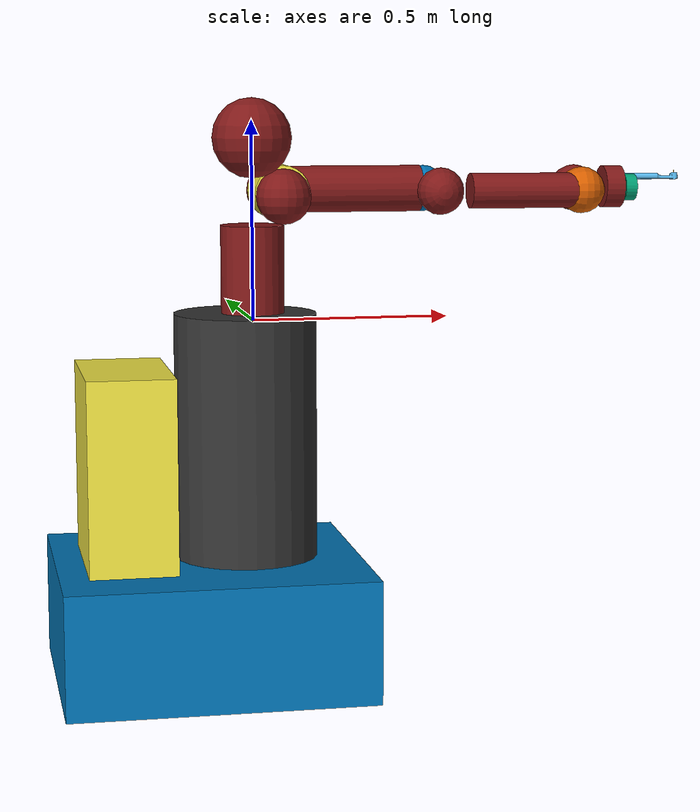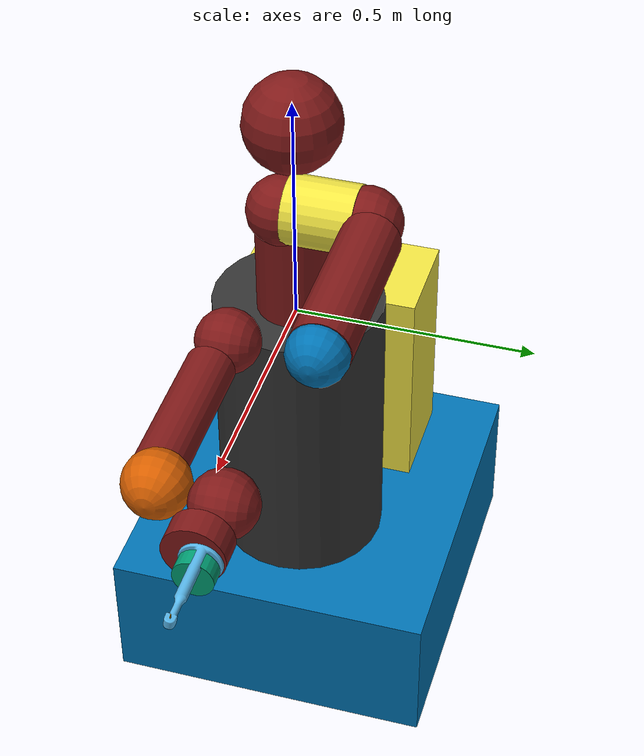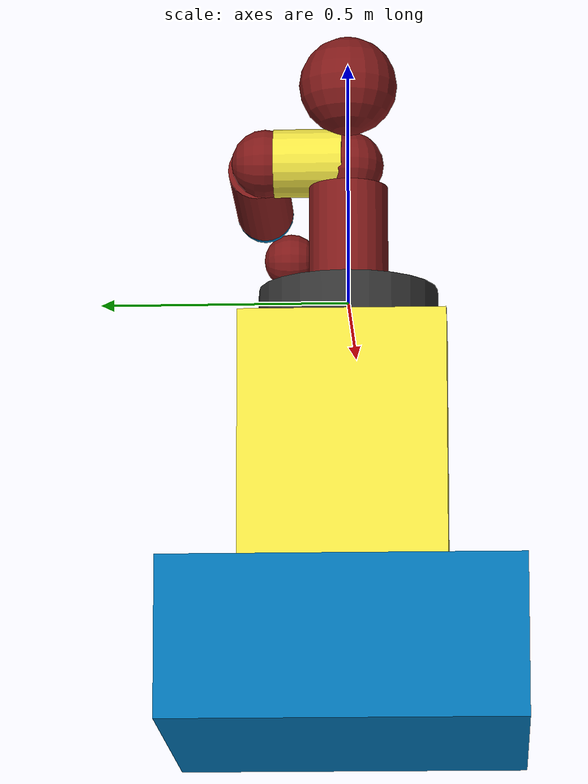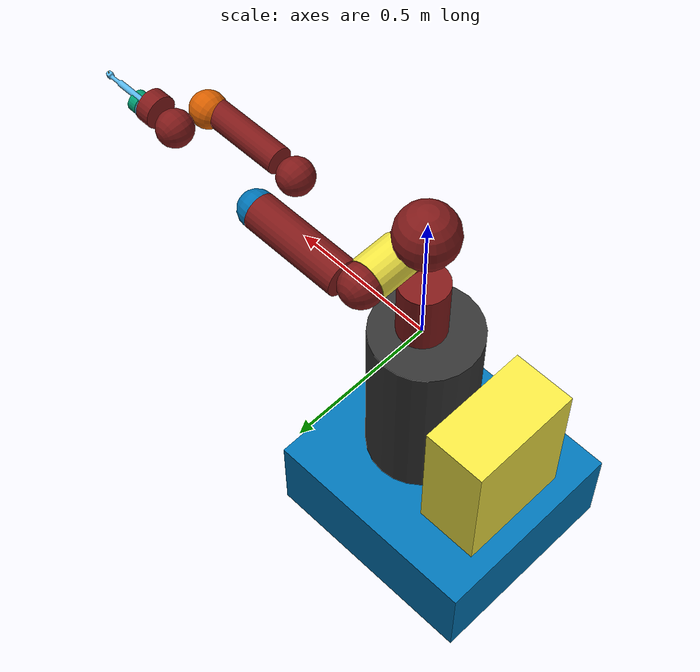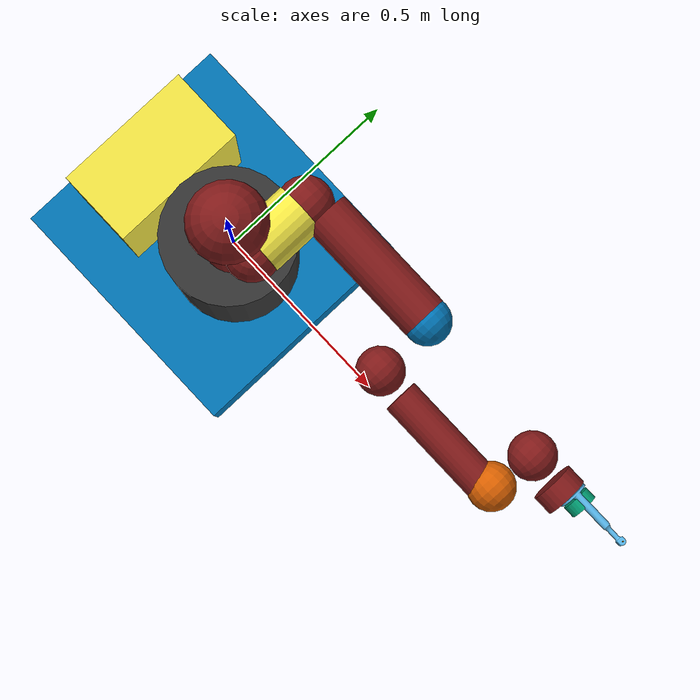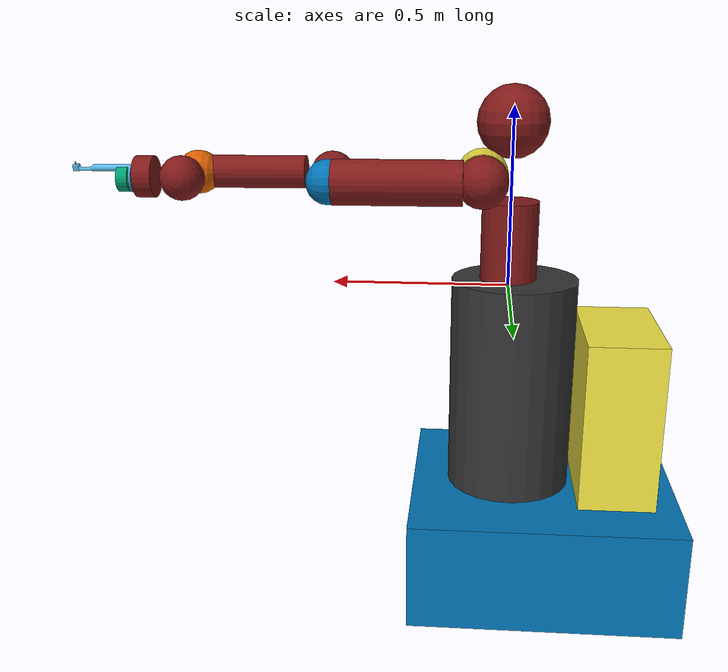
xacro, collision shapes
<?xml version="1.0" ?>
<robot name="sawyer" xmlns:xacro="http://www.ros.org/wiki/xacro">

  <xacro:arg name="gazebo" default="false"/>
  <xacro:arg name="pedestal" default="true"/>
  <xacro:arg name="static" default="true"/>
  <xacro:arg name="dental_drill" default="true"/>
  <xacro:arg name="electric_gripper" default="false"/>
  <!-- Sawyer Base URDF -->
  <xacro:include filename="package://sawyer_description/urdf/sawyer_base.urdf.xacro">
    <xacro:arg name="gazebo" value="${gazebo}"/>
    <xacro:arg name="pedestal" value="${pedestal}"/>
  </xacro:include>
  <xacro:if value="$(arg gazebo)">
  <xacro:include filename="package://sawyer_description/urdf/sawyer_base.gazebo.xacro">
    <xacro:arg name="static" value="${static}"/>
    <xacro:arg name="pedestal" value="${pedestal}"/>
  </xacro:include>
  </xacro:if>
  <!-- Electric Gripper End Effector -->
  <xacro:if value="$(arg electric_gripper)">
  <xacro:include filename="package://sawyer_description/urdf/sawyer_electric_gripper.urdf.xacro">
    <xacro:arg name="gazebo" value="${gazebo}"/>
  </xacro:include>
  </xacro:if>
  <!-- Dental Drill End Effector -->
  <xacro:if value="$(arg dental_drill)">
  <xacro:include filename="package://sawyer_description/urdf/sawyer_dental_drill.urdf.xacro">
    <xacro:arg name="gazebo" value="${gazebo}"/>
  </xacro:include>
  </xacro:if>

</robot>

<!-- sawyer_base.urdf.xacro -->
<robot name="sawyer" xmlns:xacro="http://www.ros.org/wiki/xacro">
  <xacro:arg name="gazebo" default="false"/>
  <xacro:arg name="pedestal" default="true"/>
  <material name="black">
    <color rgba="0 0 0 1"/>
  </material>
  <material name="darkgray">
    <color rgba=".2 .2 .2 1"/>
  </material>
  <material name="darkred">
    <color rgba=".5 .1 .1 1"/>
  </material>
  <material name="sawyer_red">
    <color rgba=".5 .1 .1 1"/>
  </material>
  <material name="sawyer_gray">
    <color rgba="0.75294 0.75294 0.75294 1"/>
  </material>
  <link name="base"/>
  <link name="torso">
    <visual>
      <origin rpy="0 0 0" xyz="0 0 0"/>
      <geometry>
        <box size="0.001 0.001 0.001"/>
      </geometry>
      <material name="darkgray">
        <color rgba=".2 .2 .2 1"/>
      </material>
    </visual>
<xacro:unless value="$(arg gazebo)">
    <inertial>
      <origin rpy="0 0 0" xyz="0.000000 0.000000 0.000000"/>
      <mass value="0.0001"/>
      <inertia ixx="1e-08" ixy="0" ixz="0" iyy="1e-08" iyz="0" izz="1e-08"/>
    </inertial>
</xacro:unless>
  </link>
<xacro:if value="$(arg pedestal)">
  <link name="pedestal">
    <visual>
      <origin rpy="1.57079632679 0 -1.57079632679" xyz="0.26 0.345 -0.91488"/>
      <geometry>
        <mesh filename="package://sawyer_description/meshes/sawyer_pv/pedestal.DAE"/>
      </geometry>
      <material name="darkgray"/>
    </visual>
    <collision>
      <origin rpy="0 0 0" xyz="-0.02 0 -0.29"/>
      <geometry>
        <cylinder length="0.62" radius="0.18"/>
      </geometry>
    </collision>
    <inertial>
      <origin rpy="0 0 0" xyz="0 0 -0.5"/>
      <mass value="60.86397744"/>
      <inertia ixx="5.0635929" ixy="0.00103417" ixz="0.80199628" iyy="6.08689388" iyz="0.00105311" izz="4.96191932"/>
    </inertial>
  </link>
  <link name="controller_box">
    <collision>
      <origin rpy="0 0 0" xyz="-0.325 0 -0.38"/>
      <geometry>
        <box size="0.22 0.4 0.53"/>
      </geometry>
    </collision>
  </link>
  <joint name="controller_box_fixed" type="fixed">
    <origin rpy="0 0 0" xyz="0.0 0.0 0.0"/>
    <parent link="base"/>
    <child link="controller_box"/>
  </joint>
  <link name="pedestal_feet">
    <collision>
      <origin rpy="0 0 0" xyz="-0.1225 0 -0.758"/>
      <geometry>
        <box size="0.77 0.7 0.31"/>
      </geometry>
    </collision>
  </link>
  <joint name="pedestal_feet_fixed" type="fixed">
    <origin rpy="0 0 0" xyz="0.0 0.0 0.0"/>
    <parent link="base"/>
    <child link="pedestal_feet"/>
  </joint>
  <joint name="pedestal_fixed" type="fixed">
    <origin rpy="0 0 0" xyz="0.0 0.0 0.0"/>
    <parent link="base"/>
    <child link="pedestal"/>
  </joint>
</xacro:if>
  <joint name="right_arm_mount" type="fixed">
    <origin rpy="0 0 0" xyz="0.0 0.0 0.0"/>
    <parent link="base"/>
    <child link="right_arm_base_link"/>
  </joint>
  <joint name="torso_t0" type="fixed">
    <origin rpy="0 0 0" xyz="0 0 0"/>
    <parent link="base"/>
    <child link="torso"/>
  </joint>
  <link name="right_arm_base_link">
    <inertial>
      <origin rpy="0 0 0" xyz="-0.0006241 -2.8025E-05 0.065404"/>
      <mass value="2.0687"/>
      <inertia ixx="0.0067599" ixy="-4.2024E-05" ixz="-6.1904E-07" iyy="0.0067877" iyz="1.5888E-05" izz="0.0074031"/>
    </inertial>
    <visual>
      <origin rpy="0 0 0" xyz="0 0 0"/>
      <geometry>
        <mesh filename="package://sawyer_description/meshes/sawyer_pv/base.DAE"/>
      </geometry>
      <material name="sawyer_red"/>
    </visual>
    <collision>
      <origin rpy="0 0 0" xyz="0 0 0.12"/>
      <geometry>
        <cylinder length="0.24" radius="0.08"/>
      </geometry>
    </collision>
  </link>
  <link name="right_l0">
    <inertial>
      <origin rpy="0 0 0" xyz="0.024366 0.010969 0.14363"/>
      <mass value="5.3213"/>
      <inertia ixx="0.053314" ixy="0.0047093" ixz="0.011734" iyy="0.057902" iyz="0.0080179" izz="0.023659"/>
    </inertial>
    <visual>
      <origin rpy="0 0 0" xyz="0 0 0"/>
      <geometry>
        <mesh filename="package://sawyer_description/meshes/sawyer_mp3/l0.DAE"/>
      </geometry>
      <material name="sawyer_red"/>
    </visual>
    <collision>
      <origin rpy="0 0 0" xyz="0.08 0 0.23"/>
      <geometry>
        <sphere radius="0.07"/>
      </geometry>
    </collision>
  </link>
  <joint name="right_j0" type="revolute">
    <origin rpy="-0.0001523544 0.0008183138 -0.0003147602" xyz="0.0005568102 -2.7503e-05 0.0797797795"/>
    <parent link="right_arm_base_link"/>
    <child link="right_l0"/>
    <axis xyz="0 0 1"/>
    <limit effort="80.0" lower="-3.0503" upper="3.0503" velocity="1.74"/>
<xacro:if value="$(arg gazebo)">
    <dynamics damping="10.0" friction="5.0"/>
</xacro:if>
  </joint>
  <link name="head">
    <inertial>
      <origin rpy="0 0 0" xyz="0.0053207 -2.6549E-05 0.1021"/>
      <mass value="1.5795"/>
      <inertia ixx="0.011833" ixy="-4.4669E-06" ixz="4.9425E-05" iyy="0.0082709" iyz="4.2124E-07" izz="0.0049661"/>
    </inertial>
    <visual>
      <origin rpy="0 0 0" xyz="0 0 0"/>
      <geometry>
        <mesh filename="package://sawyer_description/meshes/sawyer_pv/head.DAE"/>
      </geometry>
      <material name="sawyer_red"/>
    </visual>
    <collision>
      <origin rpy="0 0 0" xyz="0 0 0.08"/>
      <geometry>
        <sphere radius="0.1"/>
      </geometry>
    </collision>
  </link>
  <joint name="head_pan" type="revolute">
    <origin rpy="-0.00061707143079 -0.00046281620664 0.0832701592425" xyz="-7.94922320844e-05 -0.000150449608932 0.2965"/>
    <parent link="right_l0"/>
    <child link="head"/>
    <axis xyz="0 0 1"/>
    <limit effort="8" lower="-5.0952" upper="0.9064" velocity="1.8"/>
<xacro:if value="$(arg gazebo)">
    <dynamics damping="1.0" friction="0.5"/>
</xacro:if>
  </joint>
  <link name="right_torso_itb">
<xacro:unless value="$(arg gazebo)">
    <inertial>
      <origin rpy="0 0 0" xyz="0.000000 0.000000 0.000000"/>
      <mass value="0.0001"/>
      <inertia ixx="1e-08" ixy="0" ixz="0" iyy="1e-08" iyz="0" izz="1e-08"/>
    </inertial>
</xacro:unless>
  </link>
  <joint name="right_torso_itb" type="fixed">
    <origin rpy="0 -1.57079632679 0" xyz="-.055 0 .22"/>
    <parent link="right_l0"/>
    <child link="right_torso_itb"/>
    <axis xyz="0 0 1"/>
  </joint>
  <link name="right_l1">
    <inertial>
      <origin rpy="0 0 0" xyz="-0.0030849 -0.026811 0.092521"/>
      <mass value="4.505"/>
      <inertia ixx="0.022398" ixy="-0.00023986" ixz="-0.00029362" iyy="0.014613" iyz="-0.0060875" izz="0.017295"/>
    </inertial>
    <visual>
      <origin rpy="0 0 0" xyz="0 0 0"/>
      <geometry>
        <mesh filename="package://sawyer_description/meshes/sawyer_mp3/l1.DAE"/>
      </geometry>
      <material name="sawyer_red"/>
    </visual>
    <collision>
      <origin rpy="0 0 0" xyz="0 0 0.1225"/>
      <geometry>
        <sphere radius="0.07"/>
      </geometry>
    </collision>
  </link>
  <joint name="right_j1" type="revolute">
    <origin rpy="-1.57099592069 1.57038480649 2.75923e-05" xyz="0.080562902 0.0500598564 0.237"/>
    <parent link="right_l0"/>
    <child link="right_l1"/>
    <axis xyz="0 0 1"/>
    <limit effort="80.0" lower="-3.8095" upper="2.2736" velocity="1.328"/>
<xacro:if value="$(arg gazebo)">
    <dynamics damping="5.0" friction="2.0"/>
</xacro:if>
  </joint>
  <link name="right_l2">
    <inertial>
      <origin rpy="0 0 0" xyz="-0.00016044 -0.014967 0.13582"/>
      <mass value="1.745"/>
      <inertia ixx="0.025506" ixy="4.4101E-06" ixz="1.4955E-05" iyy="0.0253" iyz="-0.0033204" izz="0.0034179"/>
    </inertial>
    <visual>
      <origin rpy="0 0 0" xyz="0 0 0"/>
      <geometry>
        <mesh filename="package://sawyer_description/meshes/sawyer_pv/l2.DAE"/>
      </geometry>
      <material name="sawyer_red"/>
    </visual>
    <collision>
      <origin rpy="0 0 0" xyz="0 0 0.08"/>
      <geometry>
        <cylinder length="0.34" radius="0.06"/>
      </geometry>
    </collision>
  </link>
  <joint name="right_j2" type="revolute">
    <origin rpy="1.56964620609 0.0013338202 0.001673633" xyz="-0.0003271857 -0.1402331099 0.1426167268"/>
    <parent link="right_l1"/>
    <child link="right_l2"/>
    <axis xyz="0 0 1"/>
    <limit effort="40.0" lower="-3.0426" upper="3.0426" velocity="1.957"/>
<xacro:if value="$(arg gazebo)">
    <dynamics damping="5.0" friction="2.0"/>
</xacro:if>
  </joint>
  <link name="right_l3">
    <inertial>
      <origin rpy="0 0 0" xyz="-0.0048135 -0.0281 -0.084154"/>
      <mass value="2.5097"/>
      <inertia ixx="0.01016" ixy="-9.7452E-06" ixz="0.00026624" iyy="0.0065685" iyz="0.0030316" izz="0.0069078"/>
    </inertial>
    <visual>
      <origin rpy="0 0 0" xyz="0 0 0"/>
      <geometry>
        <mesh filename="package://sawyer_description/meshes/sawyer_pv/l3.DAE"/>
      </geometry>
      <material name="sawyer_red"/>
    </visual>
    <collision>
      <origin rpy="0 0 0" xyz="0 -0.01 -0.12"/>
      <geometry>
        <sphere radius="0.06"/>
      </geometry>
    </collision>
  </link>
  <joint name="right_j3" type="revolute">
    <origin rpy="-1.57208051179 -0.0007098157 -0.0012794286" xyz="-0.0001859204 -0.0419355268 0.2597852048"/>
    <parent link="right_l2"/>
    <child link="right_l3"/>
    <axis xyz="0 0 1"/>
    <limit effort="40.0" lower="-3.0439" upper="3.0439" velocity="1.957"/>
 <xacro:if value="$(arg gazebo)">
    <dynamics damping="1.0" friction="0.5"/>
</xacro:if>
  </joint>
  <link name="right_l4">
    <inertial>
      <origin rpy="0 0 0" xyz="-0.0018844 0.0069001 0.1341"/>
      <mass value="1.1136"/>
      <inertia ixx="0.013557" ixy="1.8109E-05" ixz="0.00013523" iyy="0.013555" iyz="0.0010561" izz="0.0013658"/>
    </inertial>
    <visual>
      <origin rpy="0 0 0" xyz="0 0 0"/>
      <geometry>
        <mesh filename="package://sawyer_description/meshes/sawyer_pv/l4.DAE"/>
      </geometry>
      <material name="sawyer_red"/>
    </visual>
    <collision>
      <origin rpy="0 0 0" xyz="0 0 0.11"/>
      <geometry>
        <cylinder length="0.30" radius="0.045"/>
      </geometry>
    </collision>
  </link>
  <joint name="right_j4" type="revolute">
    <origin rpy="1.57045446649 -0.0021863709 0.0037312215" xyz="-0.0005718529 -0.1251959063 -0.126478624"/>
    <parent link="right_l3"/>
    <child link="right_l4"/>
    <axis xyz="0 0 1"/>
    <limit effort="9.0" lower="-2.9761" upper="2.9761" velocity="3.485"/>
<xacro:if value="$(arg gazebo)">
    <dynamics damping="2.0" friction="1.0"/>
</xacro:if>
  </joint>
  <link name="right_arm_itb">
<xacro:unless value="$(arg gazebo)">
    <inertial>
      <origin rpy="0 0 0" xyz="0.000000 0.000000 0.000000"/>
      <mass value="0.0001"/>
      <inertia ixx="1e-08" ixy="0" ixz="0" iyy="1e-08" iyz="0" izz="1e-08"/>
    </inertial>
</xacro:unless>
  </link>
  <joint name="right_arm_itb" type="fixed">
    <origin rpy="0 -1.57079632679 0" xyz="-.055 0 .075"/>
    <parent link="right_l4"/>
    <child link="right_arm_itb"/>
    <axis xyz="0 0 1"/>
  </joint>
  <link name="right_l5">
    <inertial>
      <origin rpy="0 0 0" xyz="0.0061133 -0.023697 0.076416"/>
      <mass value="1.5625"/>
      <inertia ixx="0.0047328" ixy="0.00011526" ixz="4.6269E-05" iyy="0.0029676" iyz="-0.0011557" izz="0.0031762"/>
    </inertial>
    <visual>
      <origin rpy="0 0 0" xyz="0 0 0"/>
      <geometry>
        <mesh filename="package://sawyer_description/meshes/sawyer_pv/l5.DAE"/>
      </geometry>
      <material name="sawyer_red"/>
    </visual>
    <collision>
      <origin rpy="0 0 0" xyz="0 0 0.1"/>
      <geometry>
        <sphere radius="0.06"/>
      </geometry>
    </collision>
  </link>
  <joint name="right_j5" type="revolute">
    <origin rpy="-1.57060120179 0.0028546724 0.0016908371" xyz="9.99503e-05 0.0305539513 0.274694147"/>
    <parent link="right_l4"/>
    <child link="right_l5"/>
    <axis xyz="0 0 1"/>
    <limit effort="9.0" lower="-2.9761" upper="2.9761" velocity="3.485"/>
<xacro:if value="$(arg gazebo)">
    <dynamics damping="1.0" friction="0.5"/>
</xacro:if>
  </joint>
  <link name="right_hand_camera"/>
  <joint name="right_hand_camera" type="fixed">
    <origin rpy="0.746138564105 1.54985201766 0.782687319262" xyz="0.0385715749764 -0.0325252183853 0.068944953023"/>
    <parent link="right_l5"/>
    <child link="right_hand_camera"/>
    <axis xyz="0 0 0"/>
  </joint>
  <link name="right_wrist"/>
  <joint name="right_wrist" type="fixed">
    <origin rpy="1.57079632679 0 0" xyz="0 0 0.10541"/>
    <parent link="right_l5"/>
    <child link="right_wrist"/>
    <axis xyz="0 0 0"/>
  </joint>
  <link name="right_l6">
    <inertial>
      <origin rpy="0 0 0" xyz="-8.0726E-06 0.0085838 -0.0049566"/>
      <mass value="0.3292"/>
      <inertia ixx="0.00031105" ixy="1.4771E-06" ixz="-3.7074E-07" iyy="0.00021549" iyz="-8.4533E-06" izz="0.00035976"/>
    </inertial>
    <visual>
      <origin rpy="0 0 0" xyz="0 0 0"/>
      <geometry>
        <mesh filename="package://sawyer_description/meshes/sawyer_mp1/l6.DAE"/>
      </geometry>
      <material name="sawyer_red"/>
    </visual>
    <collision>
      <origin rpy="0 0 0" xyz="0 0.015 -0.01"/>
      <geometry>
        <cylinder length="0.05" radius="0.055"/>
      </geometry>
    </collision>
  </link>
  <joint name="right_j6" type="revolute">
    <origin rpy="-1.56953611109 -0.17953 3.1422744561" xyz="0.0001394481 -0.1098312125 0.1049093833"/>
    <parent link="right_l5"/>
    <child link="right_l6"/>
    <axis xyz="0 0 1"/>
<xacro:if value="$(arg gazebo)">
    <limit effort="9.0" lower="-3.14" upper="3.14" velocity="4.545"/>
    <dynamics damping="1.0" friction="0.5"/>
</xacro:if>
<xacro:unless value="$(arg gazebo)">
    <limit effort="9.0" lower="-4.7124" upper="4.7124" velocity="4.545"/>
</xacro:unless>
  </joint>
  <link name="right_hand">
    <collision>
      <origin rpy="0 0 0" xyz="0 0 0.02"/>
      <geometry>
        <cylinder length="0.03" radius="0.035"/>
      </geometry>
    </collision>
<xacro:if value="$(arg gazebo)">
    <inertial>
      <origin rpy="0 0 0" xyz="0 0.1 0"/>
      <mass value="0.01"/>
      <inertia ixx="0.01" ixy="0.01" ixz="0.01" iyy="0.01" iyz="0.01" izz="0.01"/>
  </inertial>
</xacro:if>
<xacro:unless value="$(arg gazebo)">
    <inertial>
      <origin rpy="0 0 0" xyz="1.0E-08 1.0E-08 1.0E-08"/>
      <mass value="1.0E-08"/>
      <inertia ixx="1.0E-08" ixy="1.0E-08" ixz="1.0E-08" iyy="1.0E-08" iyz="1.0E-08" izz="1.0E-08"/>
    </inertial>
</xacro:unless>
  </link>
  <joint name="right_hand" type="fixed">
    <origin rpy="0 0 1.570796" xyz="0 0 0.0245"/>
    <axis xyz="0 0 1"/>
    <parent link="right_l6"/>
    <child link="right_hand"/>
  </joint>
  <link name="right_l1_2">
<xacro:unless value="$(arg gazebo)">
    <inertial>
      <origin rpy="0 0 0" xyz="1.0E-08 1.0E-08 1.0E-08"/>
      <mass value="1.0E-08"/>
      <inertia ixx="1.0E-08" ixy="1.0E-08" ixz="1.0E-08" iyy="1.0E-08" iyz="1.0E-08" izz="1.0E-08"/>
    </inertial>
</xacro:unless>
    <collision>
      <origin rpy="0 0 0" xyz="0 0 0.035"/>
      <geometry>
        <cylinder length="0.14" radius="0.07"/>
      </geometry>
    </collision>
  </link>
  <joint name="right_j1_2" type="fixed">
    <origin rpy="0 0 0" xyz="0 0 0"/>
    <parent link="right_l1"/>
    <child link="right_l1_2"/>
    <axis xyz="0 0 1"/>
  </joint>
  <link name="right_l2_2">
<xacro:unless value="$(arg gazebo)">
    <inertial>
      <origin rpy="0 0 0" xyz="1.0E-08 1.0E-08 1.0E-08"/>
      <mass value="1.0E-08"/>
      <inertia ixx="1.0E-08" ixy="1.0E-08" ixz="1.0E-08" iyy="1.0E-08" iyz="1.0E-08" izz="1.0E-08"/>
    </inertial>
</xacro:unless>
    <collision>
      <origin rpy="0 0 0" xyz="0 0 0.26"/>
      <geometry>
        <sphere radius="0.06"/>
      </geometry>
    </collision>
  </link>
  <joint name="right_j2_2" type="fixed">
    <origin rpy="0 0 0" xyz="0 0 0"/>
    <parent link="right_l2"/>
    <child link="right_l2_2"/>
    <axis xyz="0 0 1"/>
  </joint>
  <link name="right_l4_2">
<xacro:unless value="$(arg gazebo)">
    <inertial>
      <origin rpy="0 0 0" xyz="1.0E-08 1.0E-08 1.0E-08"/>
      <mass value="1.0E-08"/>
      <inertia ixx="1.0E-08" ixy="1.0E-08" ixz="1.0E-08" iyy="1.0E-08" iyz="1.0E-08" izz="1.0E-08"/>
    </inertial>
</xacro:unless>
    <collision>
      <origin rpy="0 0 0" xyz="0 0.01 0.26"/>
      <geometry>
        <sphere radius="0.06"/>
      </geometry>
    </collision>
  </link>
  <joint name="right_j4_2" type="fixed">
    <origin rpy="0 0 0" xyz="0 0 0"/>
    <parent link="right_l4"/>
    <child link="right_l4_2"/>
    <axis xyz="0 0 1"/>
  </joint>
  <link name="screen">
    <visual>
      <origin rpy="0 0 0" xyz="0 0 0"/>
      <geometry>
        <box size="0.24 0.14 0.002"/>
      </geometry>
      <material name="darkgray"/>
    </visual>
    <collision>
      <origin rpy="0 0 0" xyz="0 0 0"/>
      <geometry>
        <sphere radius="0.001"/>
      </geometry>
    </collision>
<xacro:unless value="$(arg gazebo)">
    <inertial>
      <origin rpy="0 0 0" xyz="0 0 0"/>
      <mass value="0.0001"/>
      <inertia ixx="1e-08" ixy="0" ixz="0" iyy="1e-08" iyz="0" izz="1e-08"/>
    </inertial>
</xacro:unless>
  </link>
  <joint name="display_joint" type="fixed">
    <origin rpy="1.57079632679 0 1.57079632679" xyz="0.03 0.0 0.105"/>
    <parent link="head"/>
    <child link="screen"/>
  </joint>
  <link name="head_camera"/>
  <joint name="head_camera" type="fixed">
    <origin rpy="-2.12381291814 0.00538492345377 -1.57079632679" xyz="0.0256176309412 0.00205684237621 0.215221326171"/>
    <parent link="head"/>
    <child link="head_camera"/>
    <axis xyz="0 0 0"/>
  </joint>
</robot>

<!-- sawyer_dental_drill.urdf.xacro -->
<robot name="end_effector" xmlns:xacro="http://www.ros.org/wiki/xacro">
  <xacro:arg name="gazebo" default="false"/>
  <xacro:if value="$(arg gazebo)">
    <xacro:property name="gazebo_tag" value="true" scope="local"/>
  </xacro:if>
  <xacro:unless value="$(arg gazebo)">
    <xacro:property name="gazebo_tag" value="false" scope="local"/>
  </xacro:unless>

  <xacro:include filename="$(find intera_tools_description)/urdf/dental_drill/dental_drill.xacro" />
  <xacro:dental_drill prefix="right"/>
</robot>

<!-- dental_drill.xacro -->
<robot xmlns:xacro="https://ros.org/wiki/xacro" name="dental_drill">
  <xacro:macro name="dental_drill" params="prefix">
    <link name="${prefix}_dental_drill_tip" type="fixed">
      <visual>
        <origin rpy="${pi/2} 0 0" xyz="0 0.00372 0"/>
        <geometry>
          <cylinder length="0.00744" radius="0.001"/>
        </geometry>
      </visual>
      <collision>
        <origin rpy="${pi/2} 0 0" xyz="0 0.00372 0"/>
        <geometry>
          <cylinder length="0.00744" radius="0.001"/>
        </geometry>
      </collision>
      <inertial>
        <origin rpy="0 0 0" xyz="0 0 0"/>
        <mass value="0.0001"/>
        <inertia ixx="1e-08" ixy="0" ixz="0" iyy="1e-08" iyz="0" izz="1e-08"/>
      </inertial>
    </link>
    <link name="${prefix}_dental_drill">
      <visual>
        <geometry>
          <mesh filename="package://intera_tools_description/meshes/dental_drill/boring_handpiece_wSawyerMount_MeterUnits.stl"/>
        </geometry>
      </visual>
      <collision>
        <geometry>
          <mesh filename="package://intera_tools_description/meshes/dental_drill/boring_handpiece_wSawyerMount_MeterUnits.stl"/>
        </geometry>
      </collision>
      <inertial>
      <origin rpy="0 0 0" xyz="0.0 0.0 0.0"/>
        <mass value="0.021"/>
        <inertia ixx="0.055051" ixy="0.0" ixz="-0.0" iyy="0.05081" iyz="0.010497" izz="0.011345"/>
      </inertial>
    </link>
    <joint name="${prefix}_endpoint" type="fixed">
      <origin rpy="0 0 0" xyz="0 -0.028 0"/>
      <parent link="${prefix}_hand"/>
      <child link="${prefix}_dental_drill"/>
    </joint>
    <joint name="${prefix}tip_frame" type="fixed">
      <origin rpy="0 0 0" xyz="0 -0.01744 0.149"/>
      <parent link="${prefix}_dental_drill"/>
      <child link="${prefix}_dental_drill_tip"/>
    </joint>
  </xacro:macro>
</robot>
